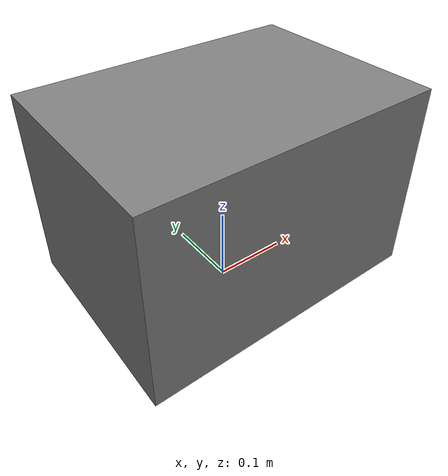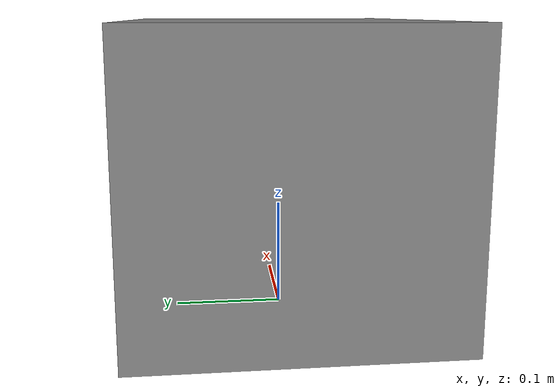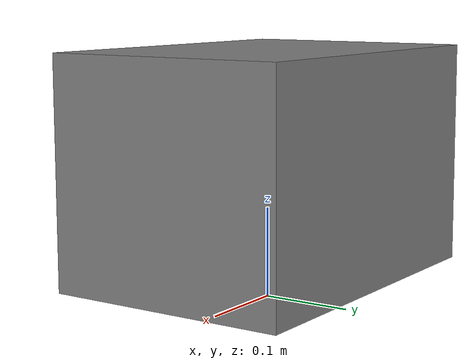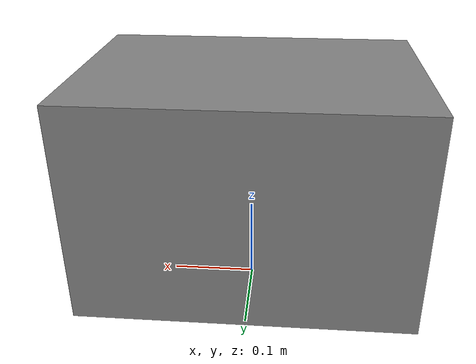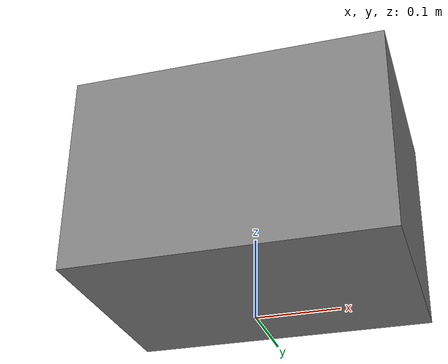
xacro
<?xml version="1.0"?>

<robot
  xmlns:xacro="http://www.ros.org/wiki/xacro"
  name="simple_cart">

  <!--
    Namespace passed when generating the model.
    Example:
      cart_namespace:=cart_1
  -->
  <xacro:arg
    name="cart_namespace"
    default="cart_1"/>

  <!-- =====================================================
       CART BODY
       ===================================================== -->

  <link name="base_link">

    <visual>
      <origin xyz="0 0 0.15"/>

      <geometry>
        <box size="0.38 0.27 0.25"/>
      </geometry>

      <material name="gray">
        <color rgba="0.5 0.5 0.5 1.0"/>
      </material>
    </visual>

    <collision>
      <origin xyz="0 0 0.15"/>

      <geometry>
        <box size="0.38 0.27 0.25"/>
      </geometry>
    </collision>

    <inertial>
      <origin xyz="0 0 0.15"/>

      <mass value="10.0"/>

      <inertia
        ixx="0.283"
        ixy="0.0"
        ixz="0.0"
        iyy="0.483"
        iyz="0.0"
        izz="0.617"/>
    </inertial>

  </link>

  <!-- =====================================================
       SIMPLE PLANAR MOVEMENT PLUGIN
       ===================================================== -->

  <gazebo>

    <plugin
      name="planar_move"
      filename="libgazebo_ros_planar_move.so">

      <ros>

        <namespace>
          /$(arg cart_namespace)
        </namespace>

      </ros>

      <update_rate>50.0</update_rate>

      <publish_odom>true</publish_odom>

      <publish_odom_tf>false</publish_odom_tf>

      <odometry_frame>odom</odometry_frame>

      <robot_base_frame>base_link</robot_base_frame>

    </plugin>

  </gazebo>

</robot>
